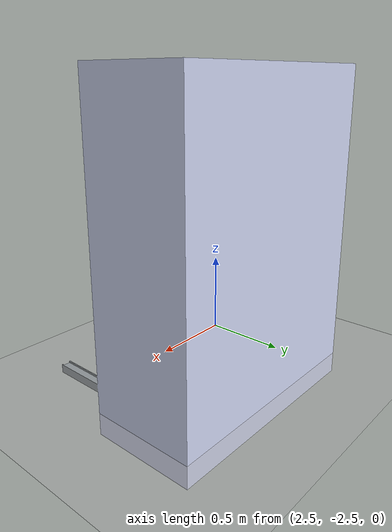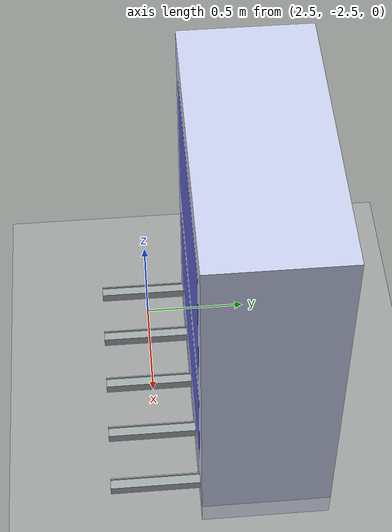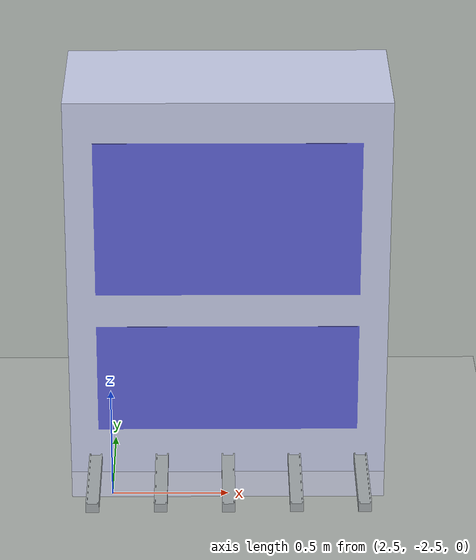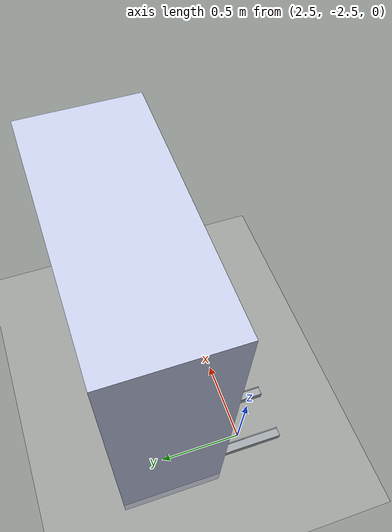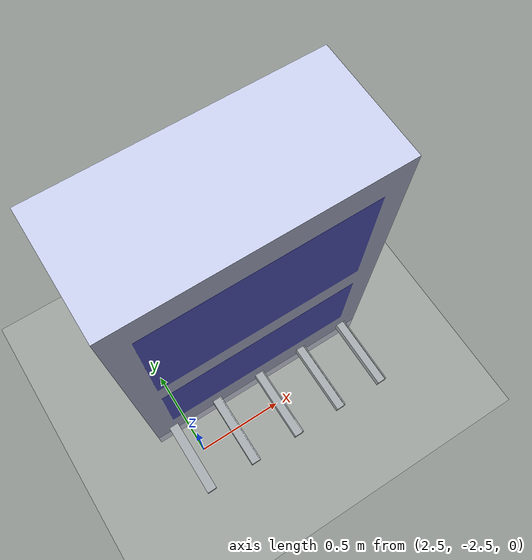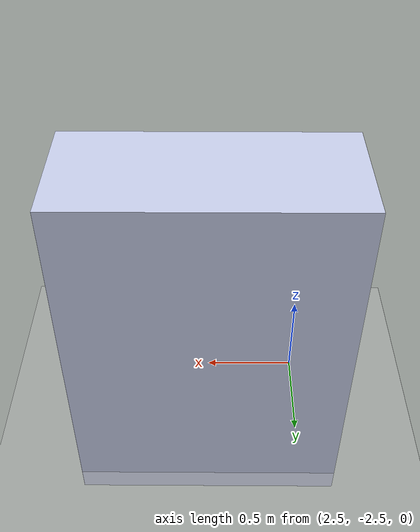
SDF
<?xml version="1.0" ?>
<sdf version="1.8">
    <world name="my_robot_world">
        <physics name="1ms" type="ignored">
            <max_step_size>0.001</max_step_size>
            <real_time_factor>1.0</real_time_factor>
        </physics>
        <plugin
            filename="ignition-gazebo-physics-system"
            name="ignition::gazebo::systems::Physics">
        </plugin>
        <plugin
            filename="ignition-gazebo-user-commands-system"
            name="ignition::gazebo::systems::UserCommands">
        </plugin>
        <plugin
            filename="ignition-gazebo-scene-broadcaster-system"
            name="ignition::gazebo::systems::SceneBroadcaster">
        </plugin>

        <gravity>0 0 -9.8</gravity>

        <light type="directional" name="sun">
            <cast_shadows>true</cast_shadows>
            <pose>0 0 10 0 0 0</pose>
            <diffuse>0.8 0.8 0.8 1</diffuse>
            <specular>0.2 0.2 0.2 1</specular>
            <attenuation>
                <range>1000</range>
                <constant>0.9</constant>
                <linear>0.01</linear>
                <quadratic>0.001</quadratic>
            </attenuation>
            <direction>-0.5 0.1 -0.9</direction>
        </light>

        <model name="ground_plane">
            <static>true</static>
            <link name="link">
                <collision name="collision">
                    <geometry>
                        <plane>
                            <normal>0 0 1</normal>
                        </plane>
                    </geometry>
                </collision>
                <visual name="visual">
                    <geometry>
                        <plane>
                            <normal>0 0 1</normal>
                            <size>100 100</size>
                        </plane>
                    </geometry>
                    <material>
                        <ambient>0.8 0.8 0.8 1</ambient>
                        <diffuse>0.8 0.8 0.8 1</diffuse>
                        <specular>0.8 0.8 0.8 1</specular>
                    </material>
                </visual>
            </link>
        </model>

        <include>
            <name>asrs</name>
            <pose>3 -2 0 0 0 0</pose>
            <uri>file://home/meditab/agv_ws/src/hey_agv/urdf/asrs.sdf</uri>
        </include>

    </world>
</sdf>

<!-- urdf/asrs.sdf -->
<sdf version="1.8">
  <model name="asrs" canonical_link="asrs_link">
    <static>true</static>
    <link name="asrs_link">
      <!-- Visual representation using your DAE file -->
      <visual name="visual">
        <geometry>
          <mesh>
            <uri>/home/meditab/agv_ws/src/hey_agv/urdf/asrs_new.dae</uri>
            <scale>1 1 1</scale>
          </mesh>
        </geometry>
      </visual>

      <!-- Collision geometry - enabled for static model -->
      <collision name="collision">
        <geometry>
          <mesh>
            <uri>/home/meditab/agv_ws/src/hey_agv/urdf/asrs_new.dae</uri>
            <scale>1 1 1</scale>
          </mesh>
        </geometry>
        <surface>
          <contact>
            <collide_bitmask>0x01</collide_bitmask>
          </contact>
          <friction>
            <ode>
              <mu>0.8</mu>
              <mu2>0.8</mu2>
            </ode>
          </friction>
        </surface>
      </collision>
    </link>
  </model>
</sdf>
